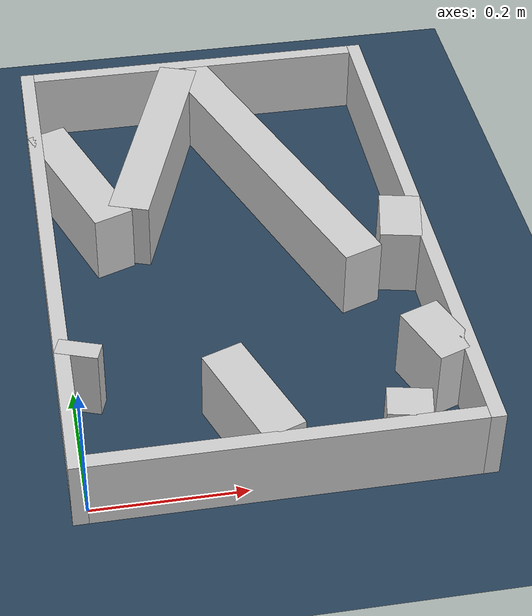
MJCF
<?xml version="1.0" ?>
<mujoco model="generated_real_template">
  <compiler angle="degree"/>
  <option timestep="0.002" integrator="implicitfast" iterations="100" cone="elliptic"/>
  <default>
    <geom density="1"/>
  </default>
  <asset>
    <texture builtin="gradient" height="3072" rgb1="0.3 0.5 0.7" rgb2="0 0 0" type="skybox" width="512"/>
    <texture builtin="checker" height="300" mark="edge" markrgb="0.8 0.8 0.8" name="groundplane" rgb1="0.2 0.3 0.4" rgb2="0.1 0.2 0.3" type="2d" width="300"/>
    <material name="groundplane" reflectance="0.2" texrepeat="5 5" texture="groundplane" texuniform="true"/>
  </asset>
  <worldbody>
    <light dir="0 0 -1" directional="true" pos="0 0 1.5"/>
    <geom name="floor" type="plane" condim="4" friction="0.5 0.005 0.001" material="groundplane" size="0 0 0.05"/>
    <body name="walls">
      <geom name="wall_boundary_left" type="box" condim="4" friction="1.0 0.005 0.0001" rgba="0.8 0.8 0.8 1" pos="-0.010000 0.387500 0.050000" euler="0 0 0.000000" size="0.010000 0.407500 0.050000"/>
      <geom name="wall_boundary_right" type="box" condim="4" friction="1.0 0.005 0.0001" rgba="0.8 0.8 0.8 1" pos="0.500000 0.387500 0.050000" euler="0 0 0.000000" size="0.010000 0.407500 0.050000"/>
      <geom name="wall_boundary_bottom" type="box" condim="4" friction="1.0 0.005 0.0001" rgba="0.8 0.8 0.8 1" pos="0.245000 -0.010000 0.050000" euler="0 0 0.000000" size="0.245000 0.010000 0.050000"/>
      <geom name="wall_boundary_top" type="box" condim="4" friction="1.0 0.005 0.0001" rgba="0.8 0.8 0.8 1" pos="0.245000 0.785000 0.050000" euler="0 0 0.000000" size="0.245000 0.010000 0.050000"/>
      <geom name="wall_inner_1_1" type="box" condim="4" friction="1.0 0.005 0.0001" rgba="0.8 0.8 0.8 1" pos="0.473286 0.372434 0.050000" euler="0 0 -101.815578" size="0.043059 0.028500 0.050000"/>
      <geom name="wall_inner_1_2" type="box" condim="4" friction="1.0 0.005 0.0001" rgba="0.8 0.8 0.8 1" pos="0.400116 0.022662 0.050000" euler="0 0 -101.815578" size="0.023153 0.028500 0.050000"/>
      <geom name="wall_inner_2_1" type="box" condim="4" friction="1.0 0.005 0.0001" rgba="0.8 0.8 0.8 1" pos="0.163415 0.612121 0.050000" euler="0 0 -109.419832" size="0.172704 0.028500 0.050000"/>
      <geom name="wall_inner_2_2" type="box" condim="4" friction="1.0 0.005 0.0001" rgba="0.8 0.8 0.8 1" pos="0.011155 0.180235 0.050000" euler="0 0 -109.419832" size="0.012860 0.028500 0.050000"/>
      <geom name="wall_inner_3_1" type="box" condim="4" friction="1.0 0.005 0.0001" rgba="0.8 0.8 0.8 1" pos="0.321319 0.540321 0.050000" euler="0 0 -69.900374" size="0.249899 0.028500 0.050000"/>
      <geom name="wall_inner_3_2" type="box" condim="4" friction="1.0 0.005 0.0001" rgba="0.8 0.8 0.8 1" pos="0.467317 0.141356 0.050000" euler="0 0 -69.900374" size="0.046320 0.028500 0.050000"/>
      <geom name="wall_inner_4_1" type="box" condim="4" friction="1.0 0.005 0.0001" rgba="0.8 0.8 0.8 1" pos="0.215524 0.074324 0.050000" euler="0 0 110.182955" size="0.079187 0.028500 0.050000"/>
      <geom name="wall_inner_4_2" type="box" condim="4" friction="1.0 0.005 0.0001" rgba="0.8 0.8 0.8 1" pos="0.045238 0.537574 0.050000" euler="0 0 110.182955" size="0.111550 0.028500 0.050000"/>
    </body>
  </worldbody>
</mujoco>
